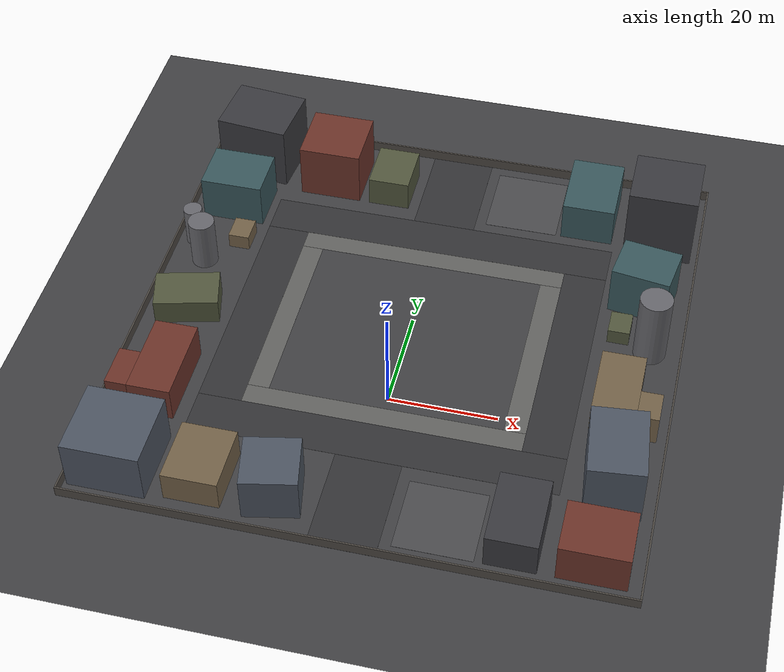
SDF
<sdf version="1.6">
 <world name="orange_igvc_campus">
  <physics name="1ms" type="ignored">
   <max_step_size>0.001</max_step_size>
   <real_time_factor>1.0</real_time_factor>
  </physics>
  <plugin filename="libignition-gazebo-physics-system.so" name="ignition::gazebo::systems::Physics"/>
  <plugin filename="libignition-gazebo-user-commands-system.so" name="ignition::gazebo::systems::UserCommands"/>
  <plugin filename="libignition-gazebo-scene-broadcaster-system.so" name="ignition::gazebo::systems::SceneBroadcaster"/>
  <plugin filename="libignition-gazebo-sensors-system.so" name="ignition::gazebo::systems::Sensors">
   <render_engine>ogre2</render_engine>
  </plugin>
  <plugin filename="libignition-gazebo-imu-system.so" name="ignition::gazebo::systems::Imu"/>
  <light type="directional" name="sun">
   <pose>0 0 10 0 0 0</pose>
   <diffuse>0.8 0.8 0.8 1</diffuse>
   <specular>0.2 0.2 0.2 1</specular>
   <direction>-0.5 0.1 -0.9</direction>
  </light>
  <include><uri>model://esda_campus</uri><name>esda_campus</name></include>
 </world>
</sdf>

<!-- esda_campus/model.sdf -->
<!-- GENERATED by tools/generate_campus_world.py - edit the layout there, not here. -->
<sdf version="1.6">
  <model name="esda_campus">
    <static>true</static>
    <!--ground-->
    <link name="ground">
      <pose>0.000 16.300 0 0 0 0</pose>
      <visual name="visual">
        <pose>0 0 -0.01 0 0 0</pose>
        <cast_shadows>false</cast_shadows>
        <geometry><plane><normal>0 0 1</normal><size>100.000 100.000</size></plane></geometry>
        <material>
          <ambient>0.25 0.25 0.26 1</ambient>
          <diffuse>0.25 0.25 0.26 1</diffuse>
          <specular>0.05 0.05 0.05 1</specular>
        </material>
      </visual>
      <collision name="collision">
        <geometry><plane><normal>0 0 1</normal><size>100.000 100.000</size></plane></geometry>
        <surface>
          <friction><ode><mu>100</mu><mu2>50</mu2></ode></friction>
          <bounce/>
          <contact><ode/></contact>
        </surface>
      </collision>
    </link>
    <!--pavement (visual only)-->
    <link name="apron_south">
      <pose>0.000 -4.200 0.002 0 0 0</pose>
      <visual name="visual">
        <cast_shadows>false</cast_shadows>
        <geometry><plane><normal>0 0 1</normal><size>51.000 4.000</size></plane></geometry>
        <material>
          <ambient>0.38 0.38 0.37 1</ambient>
          <diffuse>0.38 0.38 0.37 1</diffuse>
          <specular>0.05 0.05 0.05 1</specular>
        </material>
      </visual>
    </link>
    <link name="apron_north">
      <pose>0.000 36.800 0.002 0 0 0</pose>
      <visual name="visual">
        <cast_shadows>false</cast_shadows>
        <geometry><plane><normal>0 0 1</normal><size>51.000 4.000</size></plane></geometry>
        <material>
          <ambient>0.38 0.38 0.37 1</ambient>
          <diffuse>0.38 0.38 0.37 1</diffuse>
          <specular>0.05 0.05 0.05 1</specular>
        </material>
      </visual>
    </link>
    <link name="apron_west">
      <pose>-23.500 16.300 0.002 0 0 0</pose>
      <visual name="visual">
        <cast_shadows>false</cast_shadows>
        <geometry><plane><normal>0 0 1</normal><size>4.000 37.000</size></plane></geometry>
        <material>
          <ambient>0.38 0.38 0.37 1</ambient>
          <diffuse>0.38 0.38 0.37 1</diffuse>
          <specular>0.05 0.05 0.05 1</specular>
        </material>
      </visual>
    </link>
    <link name="apron_east">
      <pose>23.500 16.300 0.002 0 0 0</pose>
      <visual name="visual">
        <cast_shadows>false</cast_shadows>
        <geometry><plane><normal>0 0 1</normal><size>4.000 37.000</size></plane></geometry>
        <material>
          <ambient>0.38 0.38 0.37 1</ambient>
          <diffuse>0.38 0.38 0.37 1</diffuse>
          <specular>0.05 0.05 0.05 1</specular>
        </material>
      </visual>
    </link>
    <link name="ring_south">
      <pose>0.000 -10.200 0.003 0 0 0</pose>
      <visual name="visual">
        <cast_shadows>false</cast_shadows>
        <geometry><plane><normal>0 0 1</normal><size>67.000 8.000</size></plane></geometry>
        <material>
          <ambient>0.20 0.20 0.21 1</ambient>
          <diffuse>0.20 0.20 0.21 1</diffuse>
          <specular>0.05 0.05 0.05 1</specular>
        </material>
      </visual>
    </link>
    <link name="ring_north">
      <pose>0.000 42.800 0.003 0 0 0</pose>
      <visual name="visual">
        <cast_shadows>false</cast_shadows>
        <geometry><plane><normal>0 0 1</normal><size>67.000 8.000</size></plane></geometry>
        <material>
          <ambient>0.20 0.20 0.21 1</ambient>
          <diffuse>0.20 0.20 0.21 1</diffuse>
          <specular>0.05 0.05 0.05 1</specular>
        </material>
      </visual>
    </link>
    <link name="ring_west">
      <pose>-29.500 16.300 0.003 0 0 0</pose>
      <visual name="visual">
        <cast_shadows>false</cast_shadows>
        <geometry><plane><normal>0 0 1</normal><size>8.000 45.000</size></plane></geometry>
        <material>
          <ambient>0.20 0.20 0.21 1</ambient>
          <diffuse>0.20 0.20 0.21 1</diffuse>
          <specular>0.05 0.05 0.05 1</specular>
        </material>
      </visual>
    </link>
    <link name="ring_east">
      <pose>29.500 16.300 0.003 0 0 0</pose>
      <visual name="visual">
        <cast_shadows>false</cast_shadows>
        <geometry><plane><normal>0 0 1</normal><size>8.000 45.000</size></plane></geometry>
        <material>
          <ambient>0.20 0.20 0.21 1</ambient>
          <diffuse>0.20 0.20 0.21 1</diffuse>
          <specular>0.05 0.05 0.05 1</specular>
        </material>
      </visual>
    </link>
    <link name="radial_south">
      <pose>0.000 -23.950 0.003 0 0 0</pose>
      <visual name="visual">
        <cast_shadows>false</cast_shadows>
        <geometry><plane><normal>0 0 1</normal><size>12.000 19.500</size></plane></geometry>
        <material>
          <ambient>0.20 0.20 0.21 1</ambient>
          <diffuse>0.20 0.20 0.21 1</diffuse>
          <specular>0.05 0.05 0.05 1</specular>
        </material>
      </visual>
    </link>
    <link name="radial_north">
      <pose>0.000 56.550 0.003 0 0 0</pose>
      <visual name="visual">
        <cast_shadows>false</cast_shadows>
        <geometry><plane><normal>0 0 1</normal><size>12.000 19.500</size></plane></geometry>
        <material>
          <ambient>0.20 0.20 0.21 1</ambient>
          <diffuse>0.20 0.20 0.21 1</diffuse>
          <specular>0.05 0.05 0.05 1</specular>
        </material>
      </visual>
    </link>
    <link name="carpark_southeast">
      <pose>15.000 -24.000 0.003 0 0 0</pose>
      <visual name="visual">
        <cast_shadows>false</cast_shadows>
        <geometry><plane><normal>0 0 1</normal><size>14.000 14.000</size></plane></geometry>
        <material>
          <ambient>0.29 0.29 0.30 1</ambient>
          <diffuse>0.29 0.29 0.30 1</diffuse>
          <specular>0.05 0.05 0.05 1</specular>
        </material>
      </visual>
    </link>
    <link name="carpark_northeast">
      <pose>15.000 56.500 0.003 0 0 0</pose>
      <visual name="visual">
        <cast_shadows>false</cast_shadows>
        <geometry><plane><normal>0 0 1</normal><size>14.000 15.000</size></plane></geometry>
        <material>
          <ambient>0.29 0.29 0.30 1</ambient>
          <diffuse>0.29 0.29 0.30 1</diffuse>
          <specular>0.05 0.05 0.05 1</specular>
        </material>
      </visual>
    </link>
    <!--buildings-->
    <link name="east_office">
      <pose>41.5 -26.0 4.0 0 0 0.0</pose>
      <visual name="visual">
        <geometry><box><size>12.0 10.0 8.0</size></box></geometry>
        <material>
          <ambient>0.42 0.20 0.16 1</ambient>
          <diffuse>0.42 0.20 0.16 1</diffuse>
          <specular>0.05 0.05 0.05 1</specular>
        </material>
      </visual>
      <collision name="collision">
        <geometry><box><size>12.0 10.0 8.0</size></box></geometry>
      </collision>
    </link>
    <link name="east_lab">
      <pose>42.0 -10.0 6.0 0 0 0.1</pose>
      <visual name="visual">
        <geometry><box><size>10.0 14.0 12.0</size></box></geometry>
        <material>
          <ambient>0.30 0.33 0.38 1</ambient>
          <diffuse>0.30 0.33 0.38 1</diffuse>
          <specular>0.05 0.05 0.05 1</specular>
        </material>
      </visual>
      <collision name="collision">
        <geometry><box><size>10.0 14.0 12.0</size></box></geometry>
      </collision>
    </link>
    <link name="east_l_main">
      <pose>40.0 8.0 3.0 0 0 0.0</pose>
      <visual name="visual">
        <geometry><box><size>8.0 14.0 6.0</size></box></geometry>
        <material>
          <ambient>0.45 0.38 0.28 1</ambient>
          <diffuse>0.45 0.38 0.28 1</diffuse>
          <specular>0.05 0.05 0.05 1</specular>
        </material>
      </visual>
      <collision name="collision">
        <geometry><box><size>8.0 14.0 6.0</size></box></geometry>
      </collision>
    </link>
    <link name="east_l_wing">
      <pose>46.0 4.0 3.0 0 0 0.0</pose>
      <visual name="visual">
        <geometry><box><size>4.0 6.0 6.0</size></box></geometry>
        <material>
          <ambient>0.45 0.38 0.28 1</ambient>
          <diffuse>0.45 0.38 0.28 1</diffuse>
          <specular>0.05 0.05 0.05 1</specular>
        </material>
      </visual>
      <collision name="collision">
        <geometry><box><size>4.0 6.0 6.0</size></box></geometry>
      </collision>
    </link>
    <link name="east_shed">
      <pose>38.0 25.5 1.5 0 0 0.0</pose>
      <visual name="visual">
        <geometry><box><size>4.0 5.0 3.0</size></box></geometry>
        <material>
          <ambient>0.32 0.34 0.24 1</ambient>
          <diffuse>0.32 0.34 0.24 1</diffuse>
          <specular>0.05 0.05 0.05 1</specular>
        </material>
      </visual>
      <collision name="collision">
        <geometry><box><size>4.0 5.0 3.0</size></box></geometry>
      </collision>
    </link>
    <link name="east_hall">
      <pose>41.0 35.0 5.0 0 0 -0.15</pose>
      <visual name="visual">
        <geometry><box><size>11.0 9.0 10.0</size></box></geometry>
        <material>
          <ambient>0.22 0.34 0.36 1</ambient>
          <diffuse>0.22 0.34 0.36 1</diffuse>
          <specular>0.05 0.05 0.05 1</specular>
        </material>
      </visual>
      <collision name="collision">
        <geometry><box><size>11.0 9.0 10.0</size></box></geometry>
      </collision>
    </link>
    <link name="east_tower">
      <pose>42.0 53.0 7.5 0 0 0.0</pose>
      <visual name="visual">
        <geometry><box><size>13.0 12.0 15.0</size></box></geometry>
        <material>
          <ambient>0.22 0.22 0.24 1</ambient>
          <diffuse>0.22 0.22 0.24 1</diffuse>
          <specular>0.05 0.05 0.05 1</specular>
        </material>
      </visual>
      <collision name="collision">
        <geometry><box><size>13.0 12.0 15.0</size></box></geometry>
      </collision>
    </link>
    <link name="east_kiosk">
      <pose>38.0 63.0 1.5 0 0 0.0</pose>
      <visual name="visual">
        <geometry><box><size>6.0 4.0 3.0</size></box></geometry>
        <material>
          <ambient>0.42 0.20 0.16 1</ambient>
          <diffuse>0.42 0.20 0.16 1</diffuse>
          <specular>0.05 0.05 0.05 1</specular>
        </material>
      </visual>
      <collision name="collision">
        <geometry><box><size>6.0 4.0 3.0</size></box></geometry>
      </collision>
    </link>
    <link name="west_depot">
      <pose>-42.0 -24.0 5.0 0 0 0.0</pose>
      <visual name="visual">
        <geometry><box><size>14.0 14.0 10.0</size></box></geometry>
        <material>
          <ambient>0.30 0.33 0.38 1</ambient>
          <diffuse>0.30 0.33 0.38 1</diffuse>
          <specular>0.05 0.05 0.05 1</specular>
        </material>
      </visual>
      <collision name="collision">
        <geometry><box><size>14.0 14.0 10.0</size></box></geometry>
      </collision>
    </link>
    <link name="west_court_main">
      <pose>-40.0 -5.0 3.5 0 0 0.0</pose>
      <visual name="visual">
        <geometry><box><size>8.0 16.0 7.0</size></box></geometry>
        <material>
          <ambient>0.42 0.20 0.16 1</ambient>
          <diffuse>0.42 0.20 0.16 1</diffuse>
          <specular>0.05 0.05 0.05 1</specular>
        </material>
      </visual>
      <collision name="collision">
        <geometry><box><size>8.0 16.0 7.0</size></box></geometry>
      </collision>
    </link>
    <link name="west_court_wing">
      <pose>-46.0 -9.0 3.5 0 0 0.0</pose>
      <visual name="visual">
        <geometry><box><size>4.0 8.0 7.0</size></box></geometry>
        <material>
          <ambient>0.42 0.20 0.16 1</ambient>
          <diffuse>0.42 0.20 0.16 1</diffuse>
          <specular>0.05 0.05 0.05 1</specular>
        </material>
      </visual>
      <collision name="collision">
        <geometry><box><size>4.0 8.0 7.0</size></box></geometry>
      </collision>
    </link>
    <link name="west_angled">
      <pose>-42.0 14.0 2.5 0 0 0.25</pose>
      <visual name="visual">
        <geometry><box><size>12.0 8.0 5.0</size></box></geometry>
        <material>
          <ambient>0.32 0.34 0.24 1</ambient>
          <diffuse>0.32 0.34 0.24 1</diffuse>
          <specular>0.05 0.05 0.05 1</specular>
        </material>
      </visual>
      <collision name="collision">
        <geometry><box><size>12.0 8.0 5.0</size></box></geometry>
      </collision>
    </link>
    <link name="west_shed">
      <pose>-37.5 34.0 1.5 0 0 0.0</pose>
      <visual name="visual">
        <geometry><box><size>4.0 5.0 3.0</size></box></geometry>
        <material>
          <ambient>0.45 0.38 0.28 1</ambient>
          <diffuse>0.45 0.38 0.28 1</diffuse>
          <specular>0.05 0.05 0.05 1</specular>
        </material>
      </visual>
      <collision name="collision">
        <geometry><box><size>4.0 5.0 3.0</size></box></geometry>
      </collision>
    </link>
    <link name="west_library">
      <pose>-41.0 44.0 4.5 0 0 0.0</pose>
      <visual name="visual">
        <geometry><box><size>12.0 10.0 9.0</size></box></geometry>
        <material>
          <ambient>0.22 0.34 0.36 1</ambient>
          <diffuse>0.22 0.34 0.36 1</diffuse>
          <specular>0.05 0.05 0.05 1</specular>
        </material>
      </visual>
      <collision name="collision">
        <geometry><box><size>12.0 10.0 9.0</size></box></geometry>
      </collision>
    </link>
    <link name="west_block">
      <pose>-40.0 58.0 6.5 0 0 -0.1</pose>
      <visual name="visual">
        <geometry><box><size>14.0 12.0 13.0</size></box></geometry>
        <material>
          <ambient>0.22 0.22 0.24 1</ambient>
          <diffuse>0.22 0.22 0.24 1</diffuse>
          <specular>0.05 0.05 0.05 1</specular>
        </material>
      </visual>
      <collision name="collision">
        <geometry><box><size>14.0 12.0 13.0</size></box></geometry>
      </collision>
    </link>
    <link name="south_workshop">
      <pose>-27.0 -24.0 3.0 0 0 0.0</pose>
      <visual name="visual">
        <geometry><box><size>10.0 12.0 6.0</size></box></geometry>
        <material>
          <ambient>0.45 0.38 0.28 1</ambient>
          <diffuse>0.45 0.38 0.28 1</diffuse>
          <specular>0.05 0.05 0.05 1</specular>
        </material>
      </visual>
      <collision name="collision">
        <geometry><box><size>10.0 12.0 6.0</size></box></geometry>
      </collision>
    </link>
    <link name="south_annex">
      <pose>-14.0 -25.0 4.5 0 0 0.2</pose>
      <visual name="visual">
        <geometry><box><size>10.0 10.0 9.0</size></box></geometry>
        <material>
          <ambient>0.30 0.33 0.38 1</ambient>
          <diffuse>0.30 0.33 0.38 1</diffuse>
          <specular>0.05 0.05 0.05 1</specular>
        </material>
      </visual>
      <collision name="collision">
        <geometry><box><size>10.0 10.0 9.0</size></box></geometry>
      </collision>
    </link>
    <link name="south_garage">
      <pose>28.0 -24.0 3.5 0 0 0.0</pose>
      <visual name="visual">
        <geometry><box><size>9.0 14.0 7.0</size></box></geometry>
        <material>
          <ambient>0.22 0.22 0.24 1</ambient>
          <diffuse>0.22 0.22 0.24 1</diffuse>
          <specular>0.05 0.05 0.05 1</specular>
        </material>
      </visual>
      <collision name="collision">
        <geometry><box><size>9.0 14.0 7.0</size></box></geometry>
      </collision>
    </link>
    <link name="north_centre">
      <pose>-24.0 56.0 5.5 0 0 0.0</pose>
      <visual name="visual">
        <geometry><box><size>12.0 12.0 11.0</size></box></geometry>
        <material>
          <ambient>0.42 0.20 0.16 1</ambient>
          <diffuse>0.42 0.20 0.16 1</diffuse>
          <specular>0.05 0.05 0.05 1</specular>
        </material>
      </visual>
      <collision name="collision">
        <geometry><box><size>12.0 12.0 11.0</size></box></geometry>
      </collision>
    </link>
    <link name="north_cafe">
      <pose>-12.0 55.0 3.0 0 0 0.0</pose>
      <visual name="visual">
        <geometry><box><size>8.0 10.0 6.0</size></box></geometry>
        <material>
          <ambient>0.32 0.34 0.24 1</ambient>
          <diffuse>0.32 0.34 0.24 1</diffuse>
          <specular>0.05 0.05 0.05 1</specular>
        </material>
      </visual>
      <collision name="collision">
        <geometry><box><size>8.0 10.0 6.0</size></box></geometry>
      </collision>
    </link>
    <link name="north_store">
      <pose>28.0 56.0 4.0 0 0 0.0</pose>
      <visual name="visual">
        <geometry><box><size>10.0 14.0 8.0</size></box></geometry>
        <material>
          <ambient>0.22 0.34 0.36 1</ambient>
          <diffuse>0.22 0.34 0.36 1</diffuse>
          <specular>0.05 0.05 0.05 1</specular>
        </material>
      </visual>
      <collision name="collision">
        <geometry><box><size>10.0 14.0 8.0</size></box></geometry>
      </collision>
    </link>
    <link name="east_water_tower">
      <pose>44.0 22.0 7.0 0 0 0</pose>
      <visual name="visual">
        <geometry><cylinder><radius>3.0</radius><length>14.0</length></cylinder></geometry>
        <material>
          <ambient>0.40 0.40 0.42 1</ambient>
          <diffuse>0.40 0.40 0.42 1</diffuse>
          <specular>0.05 0.05 0.05 1</specular>
        </material>
      </visual>
      <collision name="collision">
        <geometry><cylinder><radius>3.0</radius><length>14.0</length></cylinder></geometry>
      </collision>
    </link>
    <link name="west_silo">
      <pose>-43.0 27.0 5.0 0 0 0</pose>
      <visual name="visual">
        <geometry><cylinder><radius>2.5</radius><length>10.0</length></cylinder></geometry>
        <material>
          <ambient>0.40 0.40 0.42 1</ambient>
          <diffuse>0.40 0.40 0.42 1</diffuse>
          <specular>0.05 0.05 0.05 1</specular>
        </material>
      </visual>
      <collision name="collision">
        <geometry><cylinder><radius>2.5</radius><length>10.0</length></cylinder></geometry>
      </collision>
    </link>
    <link name="west_silo_small">
      <pose>-46.5 32.0 4.0 0 0 0</pose>
      <visual name="visual">
        <geometry><cylinder><radius>1.8</radius><length>8.0</length></cylinder></geometry>
        <material>
          <ambient>0.40 0.40 0.42 1</ambient>
          <diffuse>0.40 0.40 0.42 1</diffuse>
          <specular>0.05 0.05 0.05 1</specular>
        </material>
      </visual>
      <collision name="collision">
        <geometry><cylinder><radius>1.8</radius><length>8.0</length></cylinder></geometry>
      </collision>
    </link>
    <!--perimeter wall-->
    <link name="wall_south">
      <pose>0.000 -33.550 1.0 0 0 0</pose>
      <visual name="visual">
        <geometry><box><size>100.000 0.300 2.0</size></box></geometry>
        <material>
          <ambient>0.30 0.28 0.26 1</ambient>
          <diffuse>0.30 0.28 0.26 1</diffuse>
          <specular>0.05 0.05 0.05 1</specular>
        </material>
      </visual>
      <collision name="collision">
        <geometry><box><size>100.000 0.300 2.0</size></box></geometry>
      </collision>
    </link>
    <link name="wall_north">
      <pose>0.000 66.150 1.0 0 0 0</pose>
      <visual name="visual">
        <geometry><box><size>100.000 0.300 2.0</size></box></geometry>
        <material>
          <ambient>0.30 0.28 0.26 1</ambient>
          <diffuse>0.30 0.28 0.26 1</diffuse>
          <specular>0.05 0.05 0.05 1</specular>
        </material>
      </visual>
      <collision name="collision">
        <geometry><box><size>100.000 0.300 2.0</size></box></geometry>
      </collision>
    </link>
    <link name="wall_west">
      <pose>-49.850 16.300 1.0 0 0 0</pose>
      <visual name="visual">
        <geometry><box><size>0.300 99.400 2.0</size></box></geometry>
        <material>
          <ambient>0.30 0.28 0.26 1</ambient>
          <diffuse>0.30 0.28 0.26 1</diffuse>
          <specular>0.05 0.05 0.05 1</specular>
        </material>
      </visual>
      <collision name="collision">
        <geometry><box><size>0.300 99.400 2.0</size></box></geometry>
      </collision>
    </link>
    <link name="wall_east">
      <pose>49.850 16.300 1.0 0 0 0</pose>
      <visual name="visual">
        <geometry><box><size>0.300 99.400 2.0</size></box></geometry>
        <material>
          <ambient>0.30 0.28 0.26 1</ambient>
          <diffuse>0.30 0.28 0.26 1</diffuse>
          <specular>0.05 0.05 0.05 1</specular>
        </material>
      </visual>
      <collision name="collision">
        <geometry><box><size>0.300 99.400 2.0</size></box></geometry>
      </collision>
    </link>
  </model>
</sdf>
